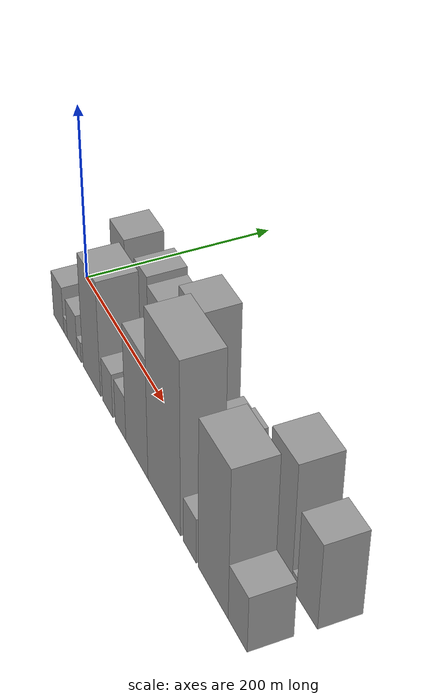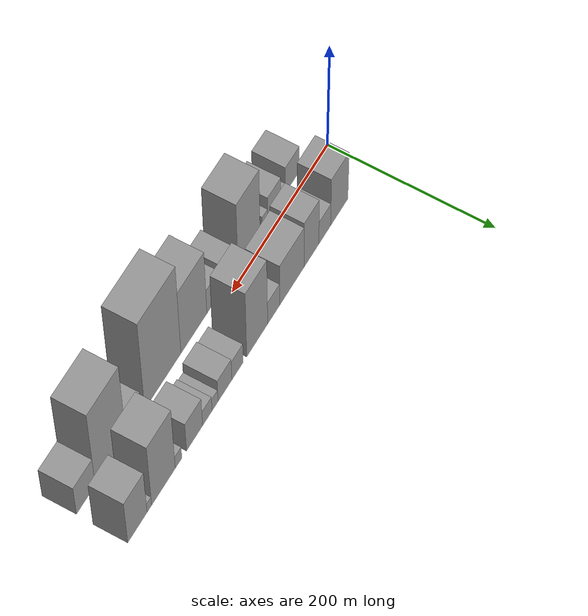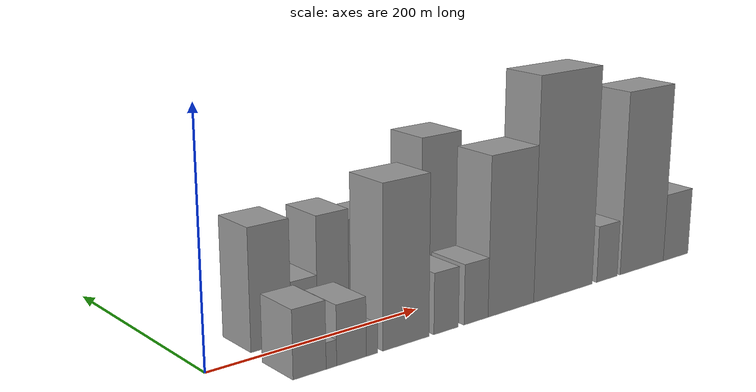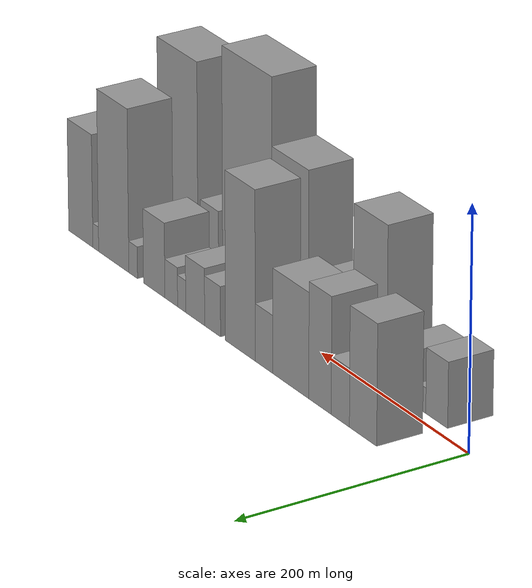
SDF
<sdf version="1.6">
 <world name="default">
  <scene>
   <sky><clouds><speed>12</speed></clouds></sky>
   <ambient>0.4 0.4 0.4 1</ambient>
   <background>0.7 0.7 0.7 1</background>
   <shadows>1</shadows>
  </scene>
  <gravity>0 0 -9.8066</gravity>
  <magnetic_field>6e-06 2.3e-05 -4.2e-05</magnetic_field>
  <physics default="0" name="default_physics" type="ode">
   <ode>
    <solver>
     <type>quick</type>
     <iters>10</iters>
     <sor>1.0</sor>
     <use_dynamic_moi_rescaling>0</use_dynamic_moi_rescaling>
    </solver>
    <constraints>
     <cfm>0</cfm>
     <erp>0.2</erp>
     <contact_max_correcting_vel>100</contact_max_correcting_vel>
     <contact_surface_layer>0.001</contact_surface_layer>
    </constraints>
   </ode>
   <max_step_size>0.004</max_step_size>
   <real_time_factor>1</real_time_factor>
   <real_time_update_rate>250</real_time_update_rate>
  </physics>
  <light name="sun" type="directional">
   <pose>0 0 10 0 0 0</pose>
   <diffuse>0.8 0.8 0.8 1</diffuse>
   <specular>0.2 0.2 0.2 1</specular>
   <attenuation>
    <range>1000</range>
    <constant>0.9</constant>
    <linear>0.01</linear>
    <quadratic>0.001</quadratic>
   </attenuation>
   <direction>-0.5 0.1 -0.9</direction>
  </light>
  <model name="building_1">
   <static>1</static>
   <pose>64.4262 30.0000 0 0.000000 0.000000 1.570796</pose>
   <link name="link">
    <pose>0 0 49.50 0 0 0</pose>
    <collision name="collision"><geometry><box><size>40.0000 36.8524 99.0000</size></box></geometry></collision>
    <visual name="visual">
     <cast_shadows>0</cast_shadows>
     <geometry><box><size>40.0000 36.8524 99.0000</size></box></geometry>
     <material>
      <script>
       <uri>model://grey_wall/materials/scripts</uri>
       <uri>model://grey_wall/materials/textures</uri>
       <name>vrc/grey_wall</name>
      </script>
     </material>
    </visual>
   </link>
  </model>
  <model name="building_2">
   <static>1</static>
   <pose>95.2699 30.0000 0 0.000000 0.000000 1.570796</pose>
   <link name="link">
    <pose>0 0 24.00 0 0 0</pose>
    <collision name="collision"><geometry><box><size>40.0000 24.8349 48.0000</size></box></geometry></collision>
    <visual name="visual">
     <cast_shadows>0</cast_shadows>
     <geometry><box><size>40.0000 24.8349 48.0000</size></box></geometry>
     <material>
      <script>
       <uri>model://grey_wall/materials/scripts</uri>
       <uri>model://grey_wall/materials/textures</uri>
       <name>vrc/grey_wall</name>
      </script>
     </material>
    </visual>
   </link>
  </model>
  <model name="building_3">
   <static>1</static>
   <pose>123.1654 30.0000 0 0.000000 0.000000 1.570796</pose>
   <link name="link">
    <pose>0 0 48.00 0 0 0</pose>
    <collision name="collision"><geometry><box><size>40.0000 30.9561 96.0000</size></box></geometry></collision>
    <visual name="visual">
     <cast_shadows>0</cast_shadows>
     <geometry><box><size>40.0000 30.9561 96.0000</size></box></geometry>
     <material>
      <script>
       <uri>model://grey_wall/materials/scripts</uri>
       <uri>model://grey_wall/materials/textures</uri>
       <name>vrc/grey_wall</name>
      </script>
     </material>
    </visual>
   </link>
  </model>
  <model name="building_4">
   <static>1</static>
   <pose>163.8862 30.0000 0 0.000000 0.000000 1.570796</pose>
   <link name="link">
    <pose>0 0 43.50 0 0 0</pose>
    <collision name="collision"><geometry><box><size>40.0000 50.4856 87.0000</size></box></geometry></collision>
    <visual name="visual">
     <cast_shadows>0</cast_shadows>
     <geometry><box><size>40.0000 50.4856 87.0000</size></box></geometry>
     <material>
      <script>
       <uri>model://grey_wall/materials/scripts</uri>
       <uri>model://grey_wall/materials/textures</uri>
       <name>vrc/grey_wall</name>
      </script>
     </material>
    </visual>
   </link>
  </model>
  <model name="building_5">
   <static>1</static>
   <pose>201.5334 30.0000 0 0.000000 0.000000 1.570796</pose>
   <link name="link">
    <pose>0 0 24.00 0 0 0</pose>
    <collision name="collision"><geometry><box><size>40.0000 24.8087 48.0000</size></box></geometry></collision>
    <visual name="visual">
     <cast_shadows>0</cast_shadows>
     <geometry><box><size>40.0000 24.8087 48.0000</size></box></geometry>
     <material>
      <script>
       <uri>model://grey_wall/materials/scripts</uri>
       <uri>model://grey_wall/materials/textures</uri>
       <name>vrc/grey_wall</name>
      </script>
     </material>
    </visual>
   </link>
  </model>
  <model name="building_6">
   <static>1</static>
   <pose>235.2693 30.0000 0 0.000000 0.000000 1.570796</pose>
   <link name="link">
    <pose>0 0 70.50 0 0 0</pose>
    <collision name="collision"><geometry><box><size>40.0000 42.6633 141.0000</size></box></geometry></collision>
    <visual name="visual">
     <cast_shadows>0</cast_shadows>
     <geometry><box><size>40.0000 42.6633 141.0000</size></box></geometry>
     <material>
      <script>
       <uri>model://grey_wall/materials/scripts</uri>
       <uri>model://grey_wall/materials/textures</uri>
       <name>vrc/grey_wall</name>
      </script>
     </material>
    </visual>
   </link>
  </model>
  <model name="building_7">
   <static>1</static>
   <pose>275.1503 30.0000 0 0.000000 0.000000 1.570796</pose>
   <link name="link">
    <pose>0 0 21.00 0 0 0</pose>
    <collision name="collision"><geometry><box><size>40.0000 23.0987 42.0000</size></box></geometry></collision>
    <visual name="visual">
     <cast_shadows>0</cast_shadows>
     <geometry><box><size>40.0000 23.0987 42.0000</size></box></geometry>
     <material>
      <script>
       <uri>model://grey_wall/materials/scripts</uri>
       <uri>model://grey_wall/materials/textures</uri>
       <name>vrc/grey_wall</name>
      </script>
     </material>
    </visual>
   </link>
  </model>
  <model name="building_8">
   <static>1</static>
   <pose>300.5536 30.0000 0 0.000000 0.000000 1.570796</pose>
   <link name="link">
    <pose>0 0 24.00 0 0 0</pose>
    <collision name="collision"><geometry><box><size>40.0000 27.7080 48.0000</size></box></geometry></collision>
    <visual name="visual">
     <cast_shadows>0</cast_shadows>
     <geometry><box><size>40.0000 27.7080 48.0000</size></box></geometry>
     <material>
      <script>
       <uri>model://grey_wall/materials/scripts</uri>
       <uri>model://grey_wall/materials/textures</uri>
       <name>vrc/grey_wall</name>
      </script>
     </material>
    </visual>
   </link>
  </model>
  <model name="building_9">
   <static>1</static>
   <pose>320.4034 30.0000 0 0.000000 0.000000 1.570796</pose>
   <link name="link">
    <pose>0 0 13.50 0 0 0</pose>
    <collision name="collision"><geometry><box><size>40.0000 11.9915 27.0000</size></box></geometry></collision>
    <visual name="visual">
     <cast_shadows>0</cast_shadows>
     <geometry><box><size>40.0000 11.9915 27.0000</size></box></geometry>
     <material>
      <script>
       <uri>model://grey_wall/materials/scripts</uri>
       <uri>model://grey_wall/materials/textures</uri>
       <name>vrc/grey_wall</name>
      </script>
     </material>
    </visual>
   </link>
  </model>
  <model name="building_10">
   <static>1</static>
   <pose>335.8590 30.0000 0 0.000000 0.000000 1.570796</pose>
   <link name="link">
    <pose>0 0 16.50 0 0 0</pose>
    <collision name="collision"><geometry><box><size>40.0000 18.9196 33.0000</size></box></geometry></collision>
    <visual name="visual">
     <cast_shadows>0</cast_shadows>
     <geometry><box><size>40.0000 18.9196 33.0000</size></box></geometry>
     <material>
      <script>
       <uri>model://grey_wall/materials/scripts</uri>
       <uri>model://grey_wall/materials/textures</uri>
       <name>vrc/grey_wall</name>
      </script>
     </material>
    </visual>
   </link>
  </model>
  <model name="building_11">
   <static>1</static>
   <pose>361.2420 30.0000 0 0.000000 0.000000 1.570796</pose>
   <link name="link">
    <pose>0 0 31.50 0 0 0</pose>
    <collision name="collision"><geometry><box><size>40.0000 31.8463 63.0000</size></box></geometry></collision>
    <visual name="visual">
     <cast_shadows>0</cast_shadows>
     <geometry><box><size>40.0000 31.8463 63.0000</size></box></geometry>
     <material>
      <script>
       <uri>model://grey_wall/materials/scripts</uri>
       <uri>model://grey_wall/materials/textures</uri>
       <name>vrc/grey_wall</name>
      </script>
     </material>
    </visual>
   </link>
  </model>
  <model name="building_12">
   <static>1</static>
   <pose>392.7208 30.0000 0 0.000000 0.000000 1.570796</pose>
   <link name="link">
    <pose>0 0 13.50 0 0 0</pose>
    <collision name="collision"><geometry><box><size>40.0000 13.1114 27.0000</size></box></geometry></collision>
    <visual name="visual">
     <cast_shadows>0</cast_shadows>
     <geometry><box><size>40.0000 13.1114 27.0000</size></box></geometry>
     <material>
      <script>
       <uri>model://grey_wall/materials/scripts</uri>
       <uri>model://grey_wall/materials/textures</uri>
       <name>vrc/grey_wall</name>
      </script>
     </material>
    </visual>
   </link>
  </model>
  <model name="building_13">
   <static>1</static>
   <pose>422.3092 30.0000 0 0.000000 0.000000 1.570796</pose>
   <link name="link">
    <pose>0 0 69.00 0 0 0</pose>
    <collision name="collision"><geometry><box><size>40.0000 46.0652 138.0000</size></box></geometry></collision>
    <visual name="visual">
     <cast_shadows>0</cast_shadows>
     <geometry><box><size>40.0000 46.0652 138.0000</size></box></geometry>
     <material>
      <script>
       <uri>model://grey_wall/materials/scripts</uri>
       <uri>model://grey_wall/materials/textures</uri>
       <name>vrc/grey_wall</name>
      </script>
     </material>
    </visual>
   </link>
  </model>
  <model name="building_14">
   <static>1</static>
   <pose>449.7823 30.0000 0 0.000000 0.000000 1.570796</pose>
   <link name="link">
    <pose>0 0 10.50 0 0 0</pose>
    <collision name="collision"><geometry><box><size>40.0000 8.8811 21.0000</size></box></geometry></collision>
    <visual name="visual">
     <cast_shadows>0</cast_shadows>
     <geometry><box><size>40.0000 8.8811 21.0000</size></box></geometry>
     <material>
      <script>
       <uri>model://grey_wall/materials/scripts</uri>
       <uri>model://grey_wall/materials/textures</uri>
       <name>vrc/grey_wall</name>
      </script>
     </material>
    </visual>
   </link>
  </model>
  <model name="building_15">
   <static>1</static>
   <pose>472.8914 30.0000 0 0.000000 0.000000 1.570796</pose>
   <link name="link">
    <pose>0 0 48.00 0 0 0</pose>
    <collision name="collision"><geometry><box><size>40.0000 37.3371 96.0000</size></box></geometry></collision>
    <visual name="visual">
     <cast_shadows>0</cast_shadows>
     <geometry><box><size>40.0000 37.3371 96.0000</size></box></geometry>
     <material>
      <script>
       <uri>model://grey_wall/materials/scripts</uri>
       <uri>model://grey_wall/materials/textures</uri>
       <name>vrc/grey_wall</name>
      </script>
     </material>
    </visual>
   </link>
  </model>
  <model name="building_16">
   <static>1</static>
   <pose>57.6384 -30.0000 0 0.000000 0.000000 1.570796</pose>
   <link name="link">
    <pose>0 0 27.00 0 0 0</pose>
    <collision name="collision"><geometry><box><size>40.0000 29.2769 54.0000</size></box></geometry></collision>
    <visual name="visual">
     <cast_shadows>0</cast_shadows>
     <geometry><box><size>40.0000 29.2769 54.0000</size></box></geometry>
     <material>
      <script>
       <uri>model://grey_wall/materials/scripts</uri>
       <uri>model://grey_wall/materials/textures</uri>
       <name>vrc/grey_wall</name>
      </script>
     </material>
    </visual>
   </link>
  </model>
  <model name="building_17">
   <static>1</static>
   <pose>77.0405 -30.0000 0 0.000000 0.000000 1.570796</pose>
   <link name="link">
    <pose>0 0 10.50 0 0 0</pose>
    <collision name="collision"><geometry><box><size>40.0000 9.5273 21.0000</size></box></geometry></collision>
    <visual name="visual">
     <cast_shadows>0</cast_shadows>
     <geometry><box><size>40.0000 9.5273 21.0000</size></box></geometry>
     <material>
      <script>
       <uri>model://grey_wall/materials/scripts</uri>
       <uri>model://grey_wall/materials/textures</uri>
       <name>vrc/grey_wall</name>
      </script>
     </material>
    </visual>
   </link>
  </model>
  <model name="building_18">
   <static>1</static>
   <pose>95.5646 -30.0000 0 0.000000 0.000000 1.570796</pose>
   <link name="link">
    <pose>0 0 24.00 0 0 0</pose>
    <collision name="collision"><geometry><box><size>40.0000 27.5208 48.0000</size></box></geometry></collision>
    <visual name="visual">
     <cast_shadows>0</cast_shadows>
     <geometry><box><size>40.0000 27.5208 48.0000</size></box></geometry>
     <material>
      <script>
       <uri>model://grey_wall/materials/scripts</uri>
       <uri>model://grey_wall/materials/textures</uri>
       <name>vrc/grey_wall</name>
      </script>
     </material>
    </visual>
   </link>
  </model>
  <model name="building_19">
   <static>1</static>
   <pose>114.7574 -30.0000 0 0.000000 0.000000 1.570796</pose>
   <link name="link">
    <pose>0 0 12.00 0 0 0</pose>
    <collision name="collision"><geometry><box><size>40.0000 10.8649 24.0000</size></box></geometry></collision>
    <visual name="visual">
     <cast_shadows>0</cast_shadows>
     <geometry><box><size>40.0000 10.8649 24.0000</size></box></geometry>
     <material>
      <script>
       <uri>model://grey_wall/materials/scripts</uri>
       <uri>model://grey_wall/materials/textures</uri>
       <name>vrc/grey_wall</name>
      </script>
     </material>
    </visual>
   </link>
  </model>
  <model name="building_20">
   <static>1</static>
   <pose>148.1999 -30.0000 0 0.000000 0.000000 1.570796</pose>
   <link name="link">
    <pose>0 0 66.00 0 0 0</pose>
    <collision name="collision"><geometry><box><size>40.0000 46.0201 132.0000</size></box></geometry></collision>
    <visual name="visual">
     <cast_shadows>0</cast_shadows>
     <geometry><box><size>40.0000 46.0201 132.0000</size></box></geometry>
     <material>
      <script>
       <uri>model://grey_wall/materials/scripts</uri>
       <uri>model://grey_wall/materials/textures</uri>
       <name>vrc/grey_wall</name>
      </script>
     </material>
    </visual>
   </link>
  </model>
  <model name="building_21">
   <static>1</static>
   <pose>189.1017 -30.0000 0 0.000000 0.000000 1.570796</pose>
   <link name="link">
    <pose>0 0 25.50 0 0 0</pose>
    <collision name="collision"><geometry><box><size>40.0000 25.7834 51.0000</size></box></geometry></collision>
    <visual name="visual">
     <cast_shadows>0</cast_shadows>
     <geometry><box><size>40.0000 25.7834 51.0000</size></box></geometry>
     <material>
      <script>
       <uri>model://grey_wall/materials/scripts</uri>
       <uri>model://grey_wall/materials/textures</uri>
       <name>vrc/grey_wall</name>
      </script>
     </material>
    </visual>
   </link>
  </model>
  <model name="building_22">
   <static>1</static>
   <pose>221.1020 -30.0000 0 0.000000 0.000000 1.570796</pose>
   <link name="link">
    <pose>0 0 25.50 0 0 0</pose>
    <collision name="collision"><geometry><box><size>40.0000 26.2173 51.0000</size></box></geometry></collision>
    <visual name="visual">
     <cast_shadows>0</cast_shadows>
     <geometry><box><size>40.0000 26.2173 51.0000</size></box></geometry>
     <material>
      <script>
       <uri>model://grey_wall/materials/scripts</uri>
       <uri>model://grey_wall/materials/textures</uri>
       <name>vrc/grey_wall</name>
      </script>
     </material>
    </visual>
   </link>
  </model>
  <model name="building_23">
   <static>1</static>
   <pose>260.3168 -30.0000 0 0.000000 0.000000 1.570796</pose>
   <link name="link">
    <pose>0 0 67.50 0 0 0</pose>
    <collision name="collision"><geometry><box><size>40.0000 52.2123 135.0000</size></box></geometry></collision>
    <visual name="visual">
     <cast_shadows>0</cast_shadows>
     <geometry><box><size>40.0000 52.2123 135.0000</size></box></geometry>
     <material>
      <script>
       <uri>model://grey_wall/materials/scripts</uri>
       <uri>model://grey_wall/materials/textures</uri>
       <name>vrc/grey_wall</name>
      </script>
     </material>
    </visual>
   </link>
  </model>
  <model name="building_24">
   <static>1</static>
   <pose>322.3757 -30.0000 0 0.000000 0.000000 1.570796</pose>
   <link name="link">
    <pose>0 0 96.00 0 0 0</pose>
    <collision name="collision"><geometry><box><size>40.0000 71.9055 192.0000</size></box></geometry></collision>
    <visual name="visual">
     <cast_shadows>0</cast_shadows>
     <geometry><box><size>40.0000 71.9055 192.0000</size></box></geometry>
     <material>
      <script>
       <uri>model://grey_wall/materials/scripts</uri>
       <uri>model://grey_wall/materials/textures</uri>
       <name>vrc/grey_wall</name>
      </script>
     </material>
    </visual>
   </link>
  </model>
  <model name="building_25">
   <static>1</static>
   <pose>377.7022 -30.0000 0 0.000000 0.000000 1.570796</pose>
   <link name="link">
    <pose>0 0 25.50 0 0 0</pose>
    <collision name="collision"><geometry><box><size>40.0000 26.7474 51.0000</size></box></geometry></collision>
    <visual name="visual">
     <cast_shadows>0</cast_shadows>
     <geometry><box><size>40.0000 26.7474 51.0000</size></box></geometry>
     <material>
      <script>
       <uri>model://grey_wall/materials/scripts</uri>
       <uri>model://grey_wall/materials/textures</uri>
       <name>vrc/grey_wall</name>
      </script>
     </material>
    </visual>
   </link>
  </model>
  <model name="building_26">
   <static>1</static>
   <pose>424.8310 -30.0000 0 0.000000 0.000000 1.570796</pose>
   <link name="link">
    <pose>0 0 82.50 0 0 0</pose>
    <collision name="collision"><geometry><box><size>40.0000 59.5100 165.0000</size></box></geometry></collision>
    <visual name="visual">
     <cast_shadows>0</cast_shadows>
     <geometry><box><size>40.0000 59.5100 165.0000</size></box></geometry>
     <material>
      <script>
       <uri>model://grey_wall/materials/scripts</uri>
       <uri>model://grey_wall/materials/textures</uri>
       <name>vrc/grey_wall</name>
      </script>
     </material>
    </visual>
   </link>
  </model>
  <model name="building_27">
   <static>1</static>
   <pose>472.5029 -30.0000 0 0.000000 0.000000 1.570796</pose>
   <link name="link">
    <pose>0 0 31.50 0 0 0</pose>
    <collision name="collision"><geometry><box><size>40.0000 35.8338 63.0000</size></box></geometry></collision>
    <visual name="visual">
     <cast_shadows>0</cast_shadows>
     <geometry><box><size>40.0000 35.8338 63.0000</size></box></geometry>
     <material>
      <script>
       <uri>model://grey_wall/materials/scripts</uri>
       <uri>model://grey_wall/materials/textures</uri>
       <name>vrc/grey_wall</name>
      </script>
     </material>
    </visual>
   </link>
  </model>
 </world>
</sdf>
